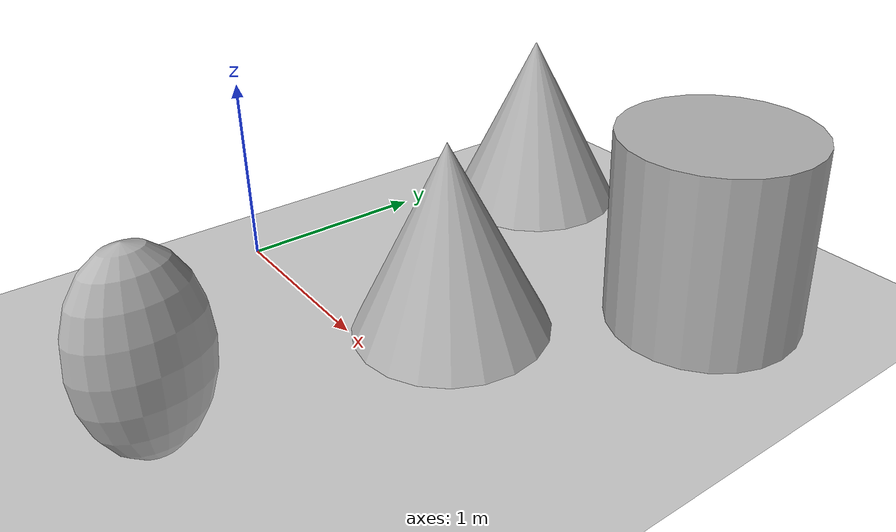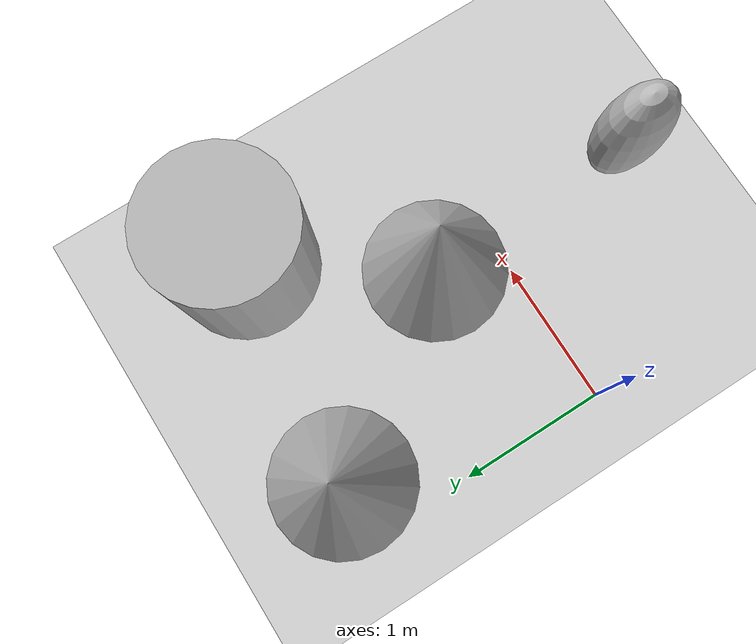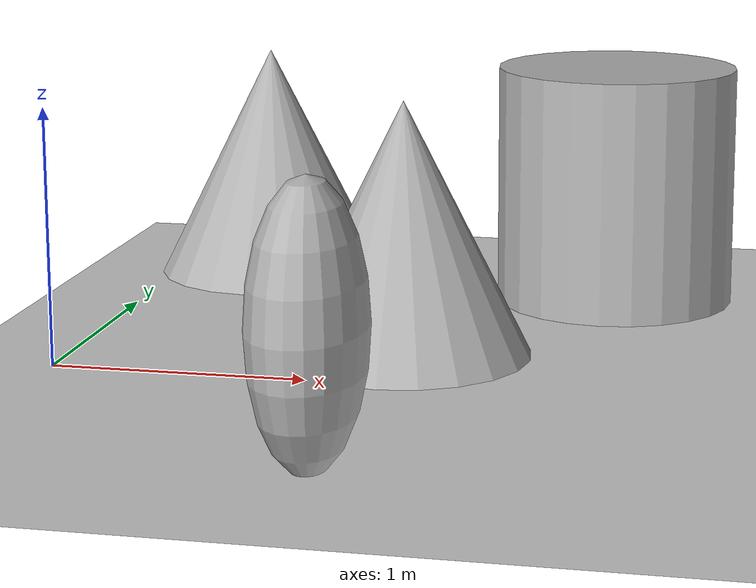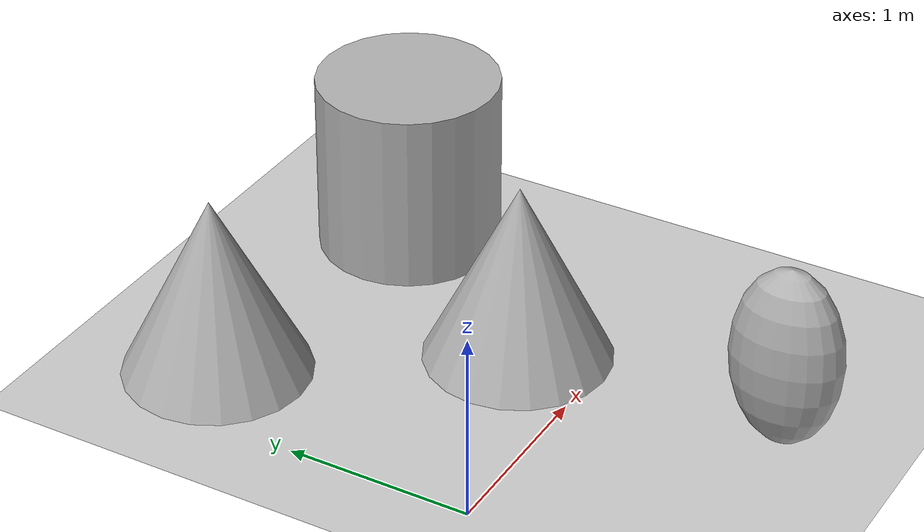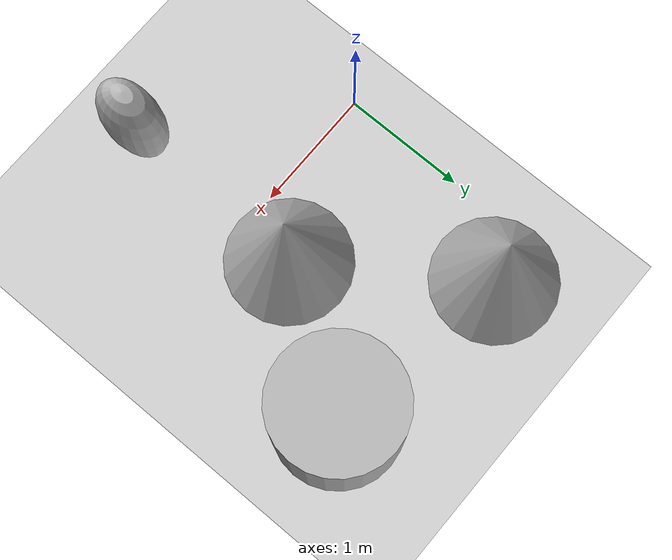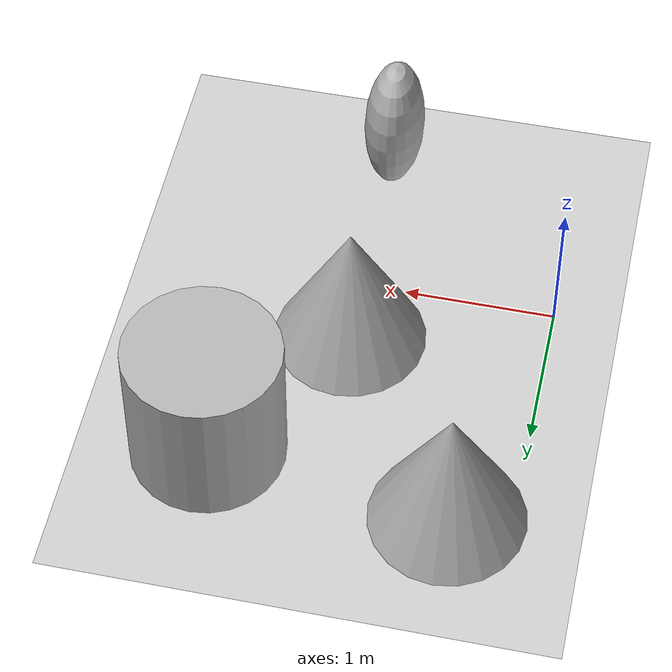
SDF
<sdf version='1.10'>
  <world name='empty'>
    <physics name='1ms' type='ignored'>
      <max_step_size>0.001</max_step_size>
      <real_time_factor>1</real_time_factor>
      <real_time_update_rate>1000</real_time_update_rate>
    </physics>
    <plugin name='gz::sim::systems::Physics' filename='gz-sim-physics-system'/>
    <plugin name='gz::sim::systems::UserCommands' filename='gz-sim-user-commands-system'/>
    <plugin name='gz::sim::systems::SceneBroadcaster' filename='gz-sim-scene-broadcaster-system'/>
    <plugin name='gz::sim::systems::Contact' filename='gz-sim-contact-system'/>
    <gravity>0 0 -9.8000000000000007</gravity>
    <magnetic_field>5.5644999999999998e-06 2.2875799999999999e-05 -4.2388400000000002e-05</magnetic_field>
    <atmosphere type='adiabatic'/>
    <scene>
      <ambient>0.400000006 0.400000006 0.400000006 1</ambient>
      <background>0.699999988 0.699999988 0.699999988 1</background>
      <shadows>true</shadows>
    </scene>
    <model name='ground_plane'>
      <static>true</static>
      <link name='link'>
        <collision name='collision'>
          <geometry>
            <plane>
              <normal>0 0 1</normal>
              <size>100 100</size>
            </plane>
          </geometry>
          <surface>
            <friction>
              <ode/>
            </friction>
            <bounce/>
            <contact/>
          </surface>
        </collision>
        <visual name='visual'>
          <geometry>
            <plane>
              <normal>0 0 1</normal>
              <size>100 100</size>
            </plane>
          </geometry>
          <material>
            <ambient>0.800000012 0.800000012 0.800000012 1</ambient>
            <diffuse>0.800000012 0.800000012 0.800000012 1</diffuse>
            <specular>0.800000012 0.800000012 0.800000012 1</specular>
          </material>
        </visual>
        <pose>0 0 0 0 0 0</pose>
        <inertial>
          <pose>0 0 0 0 0 0</pose>
          <mass>1</mass>
          <inertia>
            <ixx>1</ixx>
            <ixy>0</ixy>
            <ixz>0</ixz>
            <iyy>1</iyy>
            <iyz>0</iyz>
            <izz>1</izz>
          </inertia>
        </inertial>
        <enable_wind>false</enable_wind>
      </link>
      <pose>0 0 0 0 0 0</pose>
      <self_collide>false</self_collide>
    </model>
    <model name='cone'>
      <pose>0.40989253366978939 1.7069467259041617 0.5 0 0 0</pose>
      <link name='cone_link'>
        <inertial>
          <inertia>
            <ixx>0.074999999999999997</ixx>
            <ixy>0</ixy>
            <ixz>0</ixz>
            <iyy>0.074999999999999997</iyy>
            <iyz>0</iyz>
            <izz>0.074999999999999997</izz>
          </inertia>
          <mass>1</mass>
          <pose>0 0 0 0 0 0</pose>
        </inertial>
        <collision name='cone_collision'>
          <geometry>
            <cone>
              <radius>0.5</radius>
              <length>1</length>
            </cone>
          </geometry>
          <surface>
            <friction>
              <ode/>
            </friction>
            <bounce/>
            <contact/>
          </surface>
        </collision>
        <visual name='cone_visual'>
          <geometry>
            <cone>
              <radius>0.5</radius>
              <length>1</length>
            </cone>
          </geometry>
          <material>
            <ambient>0.300000012 0.300000012 0.300000012 1</ambient>
            <diffuse>0.699999988 0.699999988 0.699999988 1</diffuse>
            <specular>1 1 1 1</specular>
          </material>
        </visual>
        <pose>0 0 0 0 0 0</pose>
        <enable_wind>false</enable_wind>
      </link>
      <static>false</static>
      <self_collide>false</self_collide>
    </model>
    <model name='cylinder'>
      <pose>1.981936883535238 1.4949832679536481 0.5 0 0 0</pose>
      <link name='cylinder_link'>
        <inertial>
          <inertia>
            <ixx>0.14580000000000001</ixx>
            <ixy>0</ixy>
            <ixz>0</ixz>
            <iyy>0.14580000000000001</iyy>
            <iyz>0</iyz>
            <izz>0.125</izz>
          </inertia>
          <mass>1</mass>
          <pose>0 0 0 0 0 0</pose>
        </inertial>
        <collision name='cylinder_collision'>
          <geometry>
            <cylinder>
              <radius>0.5</radius>
              <length>1</length>
            </cylinder>
          </geometry>
          <surface>
            <friction>
              <ode/>
            </friction>
            <bounce/>
            <contact/>
          </surface>
        </collision>
        <visual name='cylinder_visual'>
          <geometry>
            <cylinder>
              <radius>0.5</radius>
              <length>1</length>
            </cylinder>
          </geometry>
          <material>
            <ambient>0.300000012 0.300000012 0.300000012 1</ambient>
            <diffuse>0.699999988 0.699999988 0.699999988 1</diffuse>
            <specular>1 1 1 1</specular>
          </material>
        </visual>
        <pose>0 0 0 0 0 0</pose>
        <enable_wind>false</enable_wind>
      </link>
      <static>false</static>
      <self_collide>false</self_collide>
    </model>
    <model name='ellipsoid'>
      <pose>1.2854914565861888 -1.0496403166889274 0.5 0 0 0</pose>
      <link name='ellipsoid_link'>
        <inertial>
          <inertia>
            <ixx>0.068000000000000005</ixx>
            <ixy>0</ixy>
            <ixz>0</ixz>
            <iyy>0.058000000000000003</iyy>
            <iyz>0</iyz>
            <izz>0.025999999999999999</izz>
          </inertia>
          <mass>1</mass>
          <pose>0 0 0 0 0 0</pose>
        </inertial>
        <collision name='ellipsoid_collision'>
          <geometry>
            <ellipsoid>
              <radii>0.20000000000000001 0.29999999999999999 0.5</radii>
            </ellipsoid>
          </geometry>
          <surface>
            <friction>
              <ode/>
            </friction>
            <bounce/>
            <contact/>
          </surface>
        </collision>
        <visual name='ellipsoid_visual'>
          <geometry>
            <ellipsoid>
              <radii>0.20000000000000001 0.29999999999999999 0.5</radii>
            </ellipsoid>
          </geometry>
          <material>
            <ambient>0.300000012 0.300000012 0.300000012 1</ambient>
            <diffuse>0.699999988 0.699999988 0.699999988 1</diffuse>
            <specular>1 1 1 1</specular>
          </material>
        </visual>
        <pose>0 0 0 0 0 0</pose>
        <enable_wind>false</enable_wind>
      </link>
      <static>false</static>
      <self_collide>false</self_collide>
    </model>
    <model name='cone_0'>
      <pose>1.2854912945148405 0.43220560871114883 0.5 0 0 0</pose>
      <link name='cone_link'>
        <inertial>
          <inertia>
            <ixx>0.074999999999999997</ixx>
            <ixy>0</ixy>
            <ixz>0</ixz>
            <iyy>0.074999999999999997</iyy>
            <iyz>0</iyz>
            <izz>0.074999999999999997</izz>
          </inertia>
          <mass>1</mass>
          <pose>0 0 0 0 0 0</pose>
        </inertial>
        <collision name='cone_collision'>
          <geometry>
            <cone>
              <radius>0.5</radius>
              <length>1</length>
            </cone>
          </geometry>
          <surface>
            <friction>
              <ode/>
            </friction>
            <bounce/>
            <contact/>
          </surface>
        </collision>
        <visual name='cone_visual'>
          <geometry>
            <cone>
              <radius>0.5</radius>
              <length>1</length>
            </cone>
          </geometry>
          <material>
            <ambient>0.300000012 0.300000012 0.300000012 1</ambient>
            <diffuse>0.699999988 0.699999988 0.699999988 1</diffuse>
            <specular>1 1 1 1</specular>
          </material>
        </visual>
        <pose>0 0 0 0 0 0</pose>
        <enable_wind>false</enable_wind>
      </link>
      <static>false</static>
      <self_collide>false</self_collide>
    </model>
    <light name='sun' type='directional'>
      <pose>0 0 10 0 0 0</pose>
      <cast_shadows>true</cast_shadows>
      <intensity>1</intensity>
      <direction>-0.5 0.10000000000000001 -0.90000000000000002</direction>
      <diffuse>0.800000012 0.800000012 0.800000012 1</diffuse>
      <specular>0.200000003 0.200000003 0.200000003 1</specular>
      <attenuation>
        <range>1000</range>
        <linear>0.01</linear>
        <constant>0.90000000000000002</constant>
        <quadratic>0.001</quadratic>
      </attenuation>
      <spot>
        <inner_angle>0</inner_angle>
        <outer_angle>0</outer_angle>
        <falloff>0</falloff>
      </spot>
    </light>
  </world>
</sdf>
